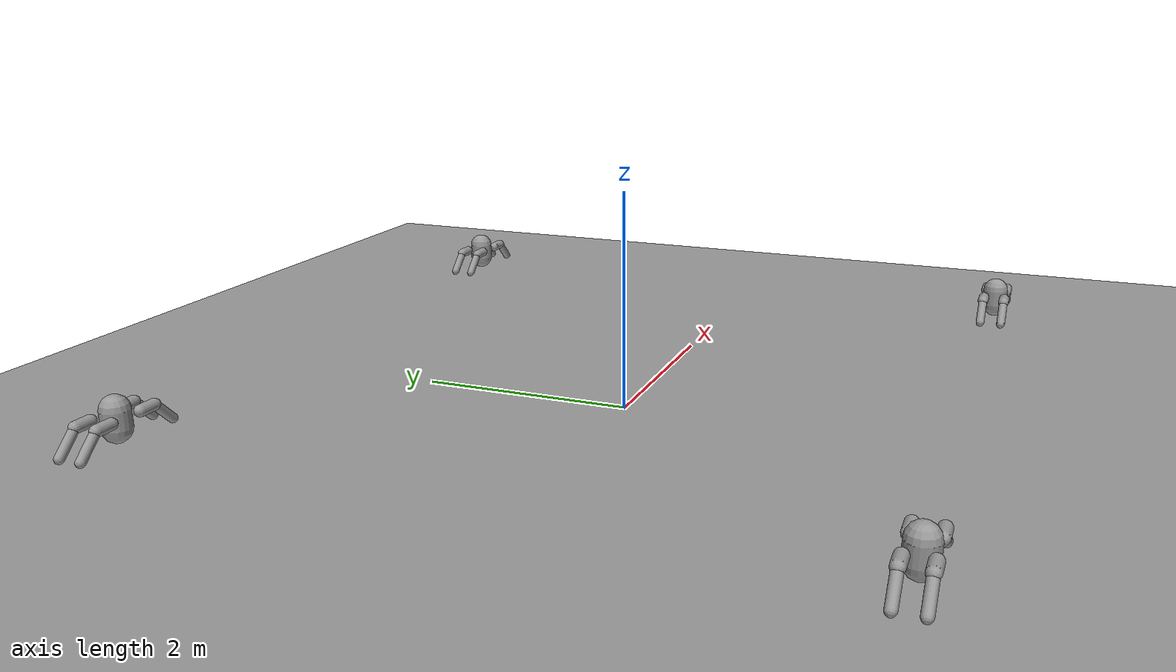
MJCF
<mujoco model="four_ants_single_scene">
  <compiler inertiafromgeom="true" angle="degree"/>
  <option timestep="0.005" gravity="0 0 -9.81" integrator="RK4" iterations="50"/>

  <size nuserdata="2" nuser_jnt="1" />

  <default>
    <geom type="capsule" rgba="0.6 0.6 0.6 1" conaffinity="1" condim="3" friction="1 0.005 0.0001"/>
    <joint armature="0.01" damping="2" limited="true"/>
    <motor ctrllimited="true" ctrlrange="-1 1"/>
  </default>

  <asset>
    <texture name="texplane" type="2d" builtin="checker" rgb1="0.9 0.9 0.9" rgb2="0.8 0.8 0.8" width="512" height="512"/>
    <material name="MatGround" texture="texplane" specular="0" shininess="0.0" reflectance="0.0"/>
  </asset>

  <worldbody>
    <geom name="ground" type="plane" material="MatGround" size="100 100 1" pos="0 0 0"/>

    <!-- ######################## ant1 ######################## -->
    <body name="ant1/torso" pos="-3 -3 0.4">
      <freejoint name="ant1/root"/>
      <!-- torso -->
      <geom name="ant1/torso_geom" type="capsule" fromto="0 0 0.1  0 0 0.25" size="0.12"/>

      <!-- FR hip -->
      <body name="ant1/fr_hip" pos="0.15 -0.10 0.20">
        <joint name="ant1/fr_hip_yaw" type="hinge" axis="0 0 1" range="-30 30"/>
        <geom  name="ant1/fr_upper" type="capsule" fromto="0 0 0  0.15 0 0" size="0.05"/>
        <body name="ant1/fr_knee" pos="0.15 0 0">
          <joint name="ant1/fr_knee_pitch" type="hinge" axis="0 1 0" range="-60 60"/>
          <geom  name="ant1/fr_lower" type="capsule" fromto="0 0 0  0.18 0 -0.18" size="0.04"/>
        </body>
      </body>

      <!-- FL hip -->
      <body name="ant1/fl_hip" pos="0.15 0.10 0.20">
        <joint name="ant1/fl_hip_yaw" type="hinge" axis="0 0 1" range="-30 30"/>
        <geom  name="ant1/fl_upper" type="capsule" fromto="0 0 0  0.15 0 0" size="0.05"/>
        <body name="ant1/fl_knee" pos="0.15 0 0">
          <joint name="ant1/fl_knee_pitch" type="hinge" axis="0 1 0" range="-60 60"/>
          <geom  name="ant1/fl_lower" type="capsule" fromto="0 0 0  0.18 0 -0.18" size="0.04"/>
        </body>
      </body>

      <!-- BR hip -->
      <body name="ant1/br_hip" pos="-0.15 -0.10 0.20">
        <joint name="ant1/br_hip_yaw" type="hinge" axis="0 0 1" range="-30 30"/>
        <geom  name="ant1/br_upper" type="capsule" fromto="0 0 0  -0.15 0 0" size="0.05"/>
        <body name="ant1/br_knee" pos="-0.15 0 0">
          <joint name="ant1/br_knee_pitch" type="hinge" axis="0 1 0" range="-60 60"/>
          <geom  name="ant1/br_lower" type="capsule" fromto="0 0 0  -0.18 0 -0.18" size="0.04"/>
        </body>
      </body>

      <!-- BL hip -->
      <body name="ant1/bl_hip" pos="-0.15 0.10 0.20">
        <joint name="ant1/bl_hip_yaw" type="hinge" axis="0 0 1" range="-30 30"/>
        <geom  name="ant1/bl_upper" type="capsule" fromto="0 0 0  -0.15 0 0" size="0.05"/>
        <body name="ant1/bl_knee" pos="-0.15 0 0">
          <joint name="ant1/bl_knee_pitch" type="hinge" axis="0 1 0" range="-60 60"/>
          <geom  name="ant1/bl_lower" type="capsule" fromto="0 0 0  -0.18 0 -0.18" size="0.04"/>
        </body>
      </body>
    </body>

    <!-- ######################## ant2 ######################## -->
    <body name="ant2/torso" pos="-3 3 0.4">
      <freejoint name="ant2/root"/>
      <geom name="ant2/torso_geom" type="capsule" fromto="0 0 0.1  0 0 0.25" size="0.12"/>
      <body name="ant2/fr_hip" pos="0.15 -0.10 0.20">
        <joint name="ant2/fr_hip_yaw" type="hinge" axis="0 0 1" range="-30 30"/>
        <geom  name="ant2/fr_upper" type="capsule" fromto="0 0 0  0.15 0 0" size="0.05"/>
        <body name="ant2/fr_knee" pos="0.15 0 0">
          <joint name="ant2/fr_knee_pitch" type="hinge" axis="0 1 0" range="-60 60"/>
          <geom  name="ant2/fr_lower" type="capsule" fromto="0 0 0  0.18 0 -0.18" size="0.04"/>
        </body>
      </body>
      <body name="ant2/fl_hip" pos="0.15 0.10 0.20">
        <joint name="ant2/fl_hip_yaw" type="hinge" axis="0 0 1" range="-30 30"/>
        <geom  name="ant2/fl_upper" type="capsule" fromto="0 0 0  0.15 0 0" size="0.05"/>
        <body name="ant2/fl_knee" pos="0.15 0 0">
          <joint name="ant2/fl_knee_pitch" type="hinge" axis="0 1 0" range="-60 60"/>
          <geom  name="ant2/fl_lower" type="capsule" fromto="0 0 0  0.18 0 -0.18" size="0.04"/>
        </body>
      </body>
      <body name="ant2/br_hip" pos="-0.15 -0.10 0.20">
        <joint name="ant2/br_hip_yaw" type="hinge" axis="0 0 1" range="-30 30"/>
        <geom  name="ant2/br_upper" type="capsule" fromto="0 0 0  -0.15 0 0" size="0.05"/>
        <body name="ant2/br_knee" pos="-0.15 0 0">
          <joint name="ant2/br_knee_pitch" type="hinge" axis="0 1 0" range="-60 60"/>
          <geom  name="ant2/br_lower" type="capsule" fromto="0 0 0  -0.18 0 -0.18" size="0.04"/>
        </body>
      </body>
      <body name="ant2/bl_hip" pos="-0.15 0.10 0.20">
        <joint name="ant2/bl_hip_yaw" type="hinge" axis="0 0 1" range="-30 30"/>
        <geom  name="ant2/bl_upper" type="capsule" fromto="0 0 0  -0.15 0 0" size="0.05"/>
        <body name="ant2/bl_knee" pos="-0.15 0 0">
          <joint name="ant2/bl_knee_pitch" type="hinge" axis="0 1 0" range="-60 60"/>
          <geom  name="ant2/bl_lower" type="capsule" fromto="0 0 0  -0.18 0 -0.18" size="0.04"/>
        </body>
      </body>
    </body>

    <!-- ######################## ant3 ######################## -->
    <body name="ant3/torso" pos="3 -3 0.4">
      <freejoint name="ant3/root"/>
      <geom name="ant3/torso_geom" type="capsule" fromto="0 0 0.1  0 0 0.25" size="0.12"/>
      <body name="ant3/fr_hip" pos="0.15 -0.10 0.20">
        <joint name="ant3/fr_hip_yaw" type="hinge" axis="0 0 1" range="-30 30"/>
        <geom  name="ant3/fr_upper" type="capsule" fromto="0 0 0  0.15 0 0" size="0.05"/>
        <body name="ant3/fr_knee" pos="0.15 0 0">
          <joint name="ant3/fr_knee_pitch" type="hinge" axis="0 1 0" range="-60 60"/>
          <geom  name="ant3/fr_lower" type="capsule" fromto="0 0 0  0.18 0 -0.18" size="0.04"/>
        </body>
      </body>
      <body name="ant3/fl_hip" pos="0.15 0.10 0.20">
        <joint name="ant3/fl_hip_yaw" type="hinge" axis="0 0 1" range="-30 30"/>
        <geom  name="ant3/fl_upper" type="capsule" fromto="0 0 0  0.15 0 0" size="0.05"/>
        <body name="ant3/fl_knee" pos="0.15 0 0">
          <joint name="ant3/fl_knee_pitch" type="hinge" axis="0 1 0" range="-60 60"/>
          <geom  name="ant3/fl_lower" type="capsule" fromto="0 0 0  0.18 0 -0.18" size="0.04"/>
        </body>
      </body>
      <body name="ant3/br_hip" pos="-0.15 -0.10 0.20">
        <joint name="ant3/br_hip_yaw" type="hinge" axis="0 0 1" range="-30 30"/>
        <geom  name="ant3/br_upper" type="capsule" fromto="0 0 0  -0.15 0 0" size="0.05"/>
        <body name="ant3/br_knee" pos="-0.15 0 0">
          <joint name="ant3/br_knee_pitch" type="hinge" axis="0 1 0" range="-60 60"/>
          <geom  name="ant3/br_lower" type="capsule" fromto="0 0 0  -0.18 0 -0.18" size="0.04"/>
        </body>
      </body>
      <body name="ant3/bl_hip" pos="-0.15 0.10 0.20">
        <joint name="ant3/bl_hip_yaw" type="hinge" axis="0 0 1" range="-30 30"/>
        <geom  name="ant3/bl_upper" type="capsule" fromto="0 0 0  -0.15 0 0" size="0.05"/>
        <body name="ant3/bl_knee" pos="-0.15 0 0">
          <joint name="ant3/bl_knee_pitch" type="hinge" axis="0 1 0" range="-60 60"/>
          <geom  name="ant3/bl_lower" type="capsule" fromto="0 0 0  -0.18 0 -0.18" size="0.04"/>
        </body>
      </body>
    </body>

    <!-- ######################## ant4 ######################## -->
    <body name="ant4/torso" pos="3 3 0.4">
      <freejoint name="ant4/root"/>
      <geom name="ant4/torso_geom" type="capsule" fromto="0 0 0.1  0 0 0.25" size="0.12"/>
      <body name="ant4/fr_hip" pos="0.15 -0.10 0.20">
        <joint name="ant4/fr_hip_yaw" type="hinge" axis="0 0 1" range="-30 30"/>
        <geom  name="ant4/fr_upper" type="capsule" fromto="0 0 0  0.15 0 0" size="0.05"/>
        <body name="ant4/fr_knee" pos="0.15 0 0">
          <joint name="ant4/fr_knee_pitch" type="hinge" axis="0 1 0" range="-60 60"/>
          <geom  name="ant4/fr_lower" type="capsule" fromto="0 0 0  0.18 0 -0.18" size="0.04"/>
        </body>
      </body>
      <body name="ant4/fl_hip" pos="0.15 0.10 0.20">
        <joint name="ant4/fl_hip_yaw" type="hinge" axis="0 0 1" range="-30 30"/>
        <geom  name="ant4/fl_upper" type="capsule" fromto="0 0 0  0.15 0 0" size="0.05"/>
        <body name="ant4/fl_knee" pos="0.15 0 0">
          <joint name="ant4/fl_knee_pitch" type="hinge" axis="0 1 0" range="-60 60"/>
          <geom  name="ant4/fl_lower" type="capsule" fromto="0 0 0  0.18 0 -0.18" size="0.04"/>
        </body>
      </body>
      <body name="ant4/br_hip" pos="-0.15 -0.10 0.20">
        <joint name="ant4/br_hip_yaw" type="hinge" axis="0 0 1" range="-30 30"/>
        <geom  name="ant4/br_upper" type="capsule" fromto="0 0 0  -0.15 0 0" size="0.05"/>
        <body name="ant4/br_knee" pos="-0.15 0 0">
          <joint name="ant4/br_knee_pitch" type="hinge" axis="0 1 0" range="-60 60"/>
          <geom  name="ant4/br_lower" type="capsule" fromto="0 0 0  -0.18 0 -0.18" size="0.04"/>
        </body>
      </body>
      <body name="ant4/bl_hip" pos="-0.15 0.10 0.20">
        <joint name="ant4/bl_hip_yaw" type="hinge" axis="0 0 1" range="-30 30"/>
        <geom  name="ant4/bl_upper" type="capsule" fromto="0 0 0  -0.15 0 0" size="0.05"/>
        <body name="ant4/bl_knee" pos="-0.15 0 0">
          <joint name="ant4/bl_knee_pitch" type="hinge" axis="0 1 0" range="-60 60"/>
          <geom  name="ant4/bl_lower" type="capsule" fromto="0 0 0  -0.18 0 -0.18" size="0.04"/>
        </body>
      </body>
    </body>

  </worldbody>

  <actuator>
    <!-- 每隻 8 個馬達，共 32 個 -->
    <!-- ant1 -->
    <motor name="ant1/m_fr_hip_yaw" joint="ant1/fr_hip_yaw" gear="120"/>
    <motor name="ant1/m_fr_knee"    joint="ant1/fr_knee_pitch" gear="120"/>
    <motor name="ant1/m_fl_hip_yaw" joint="ant1/fl_hip_yaw" gear="120"/>
    <motor name="ant1/m_fl_knee"    joint="ant1/fl_knee_pitch" gear="120"/>
    <motor name="ant1/m_br_hip_yaw" joint="ant1/br_hip_yaw" gear="120"/>
    <motor name="ant1/m_br_knee"    joint="ant1/br_knee_pitch" gear="120"/>
    <motor name="ant1/m_bl_hip_yaw" joint="ant1/bl_hip_yaw" gear="120"/>
    <motor name="ant1/m_bl_knee"    joint="ant1/bl_knee_pitch" gear="120"/>

    <!-- ant2 -->
    <motor name="ant2/m_fr_hip_yaw" joint="ant2/fr_hip_yaw" gear="120"/>
    <motor name="ant2/m_fr_knee"    joint="ant2/fr_knee_pitch" gear="120"/>
    <motor name="ant2/m_fl_hip_yaw" joint="ant2/fl_hip_yaw" gear="120"/>
    <motor name="ant2/m_fl_knee"    joint="ant2/fl_knee_pitch" gear="120"/>
    <motor name="ant2/m_br_hip_yaw" joint="ant2/br_hip_yaw" gear="120"/>
    <motor name="ant2/m_br_knee"    joint="ant2/br_knee_pitch" gear="120"/>
    <motor name="ant2/m_bl_hip_yaw" joint="ant2/bl_hip_yaw" gear="120"/>
    <motor name="ant2/m_bl_knee"    joint="ant2/bl_knee_pitch" gear="120"/>

    <!-- ant3 -->
    <motor name="ant3/m_fr_hip_yaw" joint="ant3/fr_hip_yaw" gear="120"/>
    <motor name="ant3/m_fr_knee"    joint="ant3/fr_knee_pitch" gear="120"/>
    <motor name="ant3/m_fl_hip_yaw" joint="ant3/fl_hip_yaw" gear="120"/>
    <motor name="ant3/m_fl_knee"    joint="ant3/fl_knee_pitch" gear="120"/>
    <motor name="ant3/m_br_hip_yaw" joint="ant3/br_hip_yaw" gear="120"/>
    <motor name="ant3/m_br_knee"    joint="ant3/br_knee_pitch" gear="120"/>
    <motor name="ant3/m_bl_hip_yaw" joint="ant3/bl_hip_yaw" gear="120"/>
    <motor name="ant3/m_bl_knee"    joint="ant3/bl_knee_pitch" gear="120"/>

    <!-- ant4 -->
    <motor name="ant4/m_fr_hip_yaw" joint="ant4/fr_hip_yaw" gear="120"/>
    <motor name="ant4/m_fr_knee"    joint="ant4/fr_knee_pitch" gear="120"/>
    <motor name="ant4/m_fl_hip_yaw" joint="ant4/fl_hip_yaw" gear="120"/>
    <motor name="ant4/m_fl_knee"    joint="ant4/fl_knee_pitch" gear="120"/>
    <motor name="ant4/m_br_hip_yaw" joint="ant4/br_hip_yaw" gear="120"/>
    <motor name="ant4/m_br_knee"    joint="ant4/br_knee_pitch" gear="120"/>
    <motor name="ant4/m_bl_hip_yaw" joint="ant4/bl_hip_yaw" gear="120"/>
    <motor name="ant4/m_bl_knee"    joint="ant4/bl_knee_pitch" gear="120"/>
  </actuator>
</mujoco>
